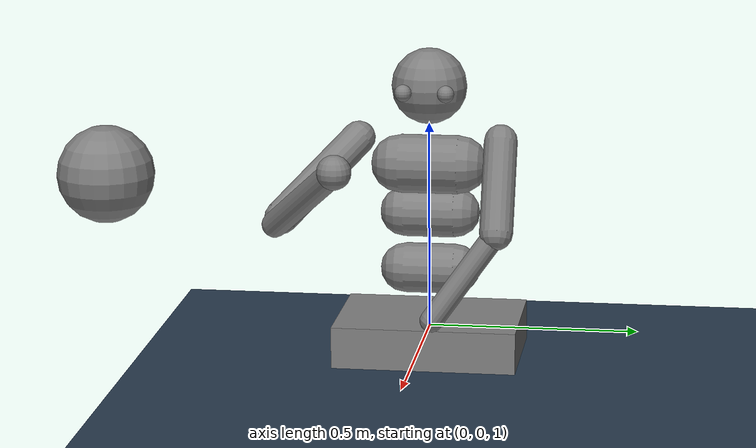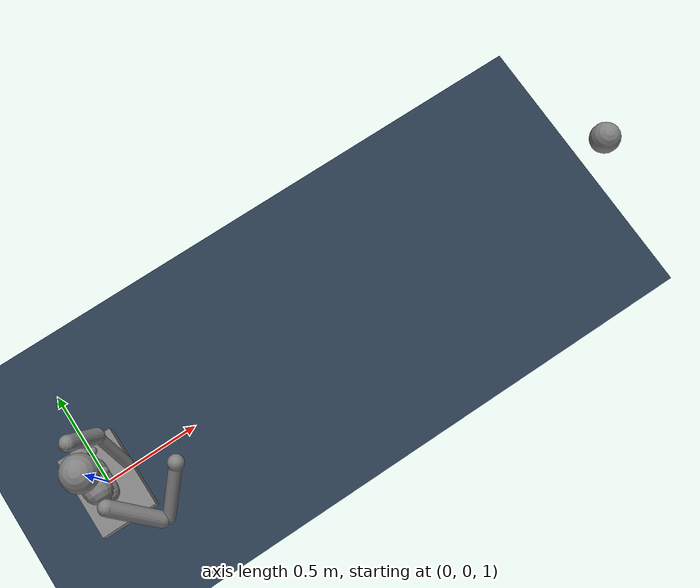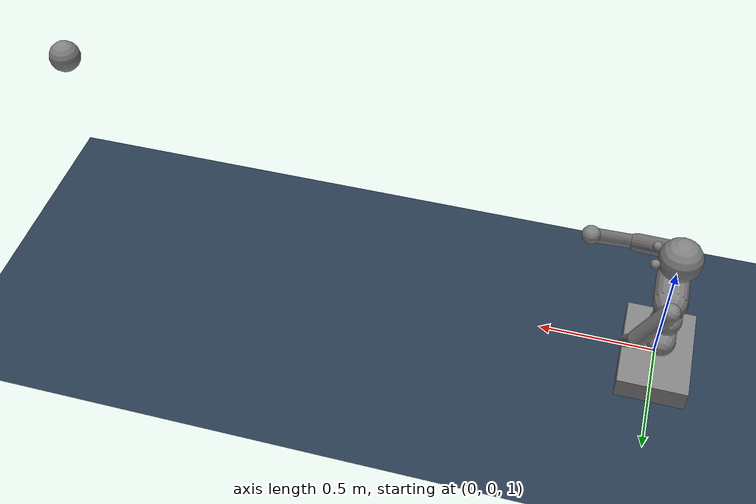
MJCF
<mujoco model='3-dmodel'>
    <compiler inertiafromgeom='true' angle='degree'/>

    <default>
        <joint limited='true' damping='1' armature='0'  />
        <motor ctrlrange='-.4 .4' ctrllimited='true'/>
    </default>

    <option timestep='0.002' iterations="50" solver="PGS">
        <flag energy="enable"/>
    </option>

    <size nkey='5'/>

    <visual>
        <map fogstart="3" fogend="5" force="0.1"/>
        <quality shadowsize="2048"/>
    </visual>

    <asset>
        <texture type="skybox" builtin="gradient" width="100" height="100" rgb1=".4 .6 .8"
                 rgb2="0 0 0"/>
        <texture name="texgeom" type="cube" builtin="flat" mark="cross" width="127" height="1278"
                 rgb1="0.8 0.6 0.4" rgb2="0.8 0.6 0.4" markrgb="1 1 1" random="0.01"/>
        <texture name="texplane" type="2d" builtin="checker" rgb1=".2 .3 .4" rgb2=".1 0.15 0.2"
                 width="100" height="100"/>

        <material name='MatPlane' reflectance='0.5' texture="texplane" texrepeat="1 1" texuniform="true"/>
        <material name='geom' texture="texgeom" texuniform="true"/>
    </asset>

    <worldbody>
        <geom name='floor' pos='0 0 0.925' size='10 10 0.125' type='plane' material="MatPlane" condim='3'/>

        <body name='torso' pos='0 0 1.4'>
            <light mode='trackcom' directional='false' diffuse='.8 .8 .8' specular='0.3 0.3 0.3' pos='0 0 4.0' dir='0 0 -1'/>

            <joint name='root' type='free' pos='0 0 0' limited='false' damping='0' armature='0' stiffness='0'/>
            <geom name='torso1' type='capsule' fromto='0 -.07 0 0 .07 0'  size='0.07' />

            <geom name='uwaist' type='capsule' fromto='-.01 -.06 -.12 -.01 .06 -.12' size='0.06'/>
            <body name='lwaist' pos='-.01 0 -0.260' quat='1.000 0 -0.002 0' >
                <geom name='lwaist' type='capsule' fromto='0 -.06 0 0 .06 0'  size='0.06' />
                <joint name='abdomen_z' type='hinge' pos='0 0 0.065' axis='0 0 1' range='-60 60' damping='5' stiffness='20' armature='0.02' />

                <body name='pelvis' pos='0 0 -0.165' quat='1.000 0 -0.002 0' >

                    <geom name='butt' type='box'  size='0.15 0.22 0.05' density="4500"/>

                </body>
            </body>
            <body name="head" pos="0 0 0.19">
                <geom name='head' type='sphere' pos='0 0 0' size='.09'/>
                <joint name="head_z" type="hinge" axis="0 0 1" range="-60 60" damping="5" stiffness="0" armature="0.02" pos="0 0 -.11"/>
                <joint name="head_y" type="hinge" axis="0 1 0" range="-20 45" damping="5" stiffness="0" armature="0.02" pos="0 0 -.11"/>
                <body name="eyes" pos="0 0 0">
                    <geom name="l_eye" type="sphere" size=".02" pos="0.095 -0.05 0"/>
                    <geom name="r_eye" type="sphere" size=".02" pos="0.095 0.05 0"/>
                </body>
            </body>

            <body name='right_upper_arm' pos='0 -0.17 0.06' >
                <joint name='right_shoulder1' type='hinge' pos='0 0 0' axis='2 1 1'  range='-60 60' stiffness='1' armature='0.0068' />
                <joint name='right_shoulder2' type='hinge' pos='0 0 0' axis='0 -1 1' range='-60 60' stiffness='1'  armature='0.0051' />
                <geom name='right_uarm1' type='capsule' fromto='0 0 0 .16 -.16 -.16'  size='0.04 0.16' />
                <body name='right_lower_arm' pos='.18 -.18 -.18' >
                    <joint name='right_elbow' type='hinge' pos='0 0 0' axis='0 -1 1' range='-90 50'  stiffness='0' armature='0.0028' />
                    <joint name="right_elbow2" type="hinge" pos="0 0 0" axis="0 0 -1" range="-45 40" stiffness="0" armature="0.0028" />
                    <geom name='right_larm' type='capsule' fromto='0.01 0.01 0.01 .17 .17 .17'  size='0.031' />
                    <body name="right_hand" pos=".18 .18 .18">
                        <geom name='right_hand' type='sphere' size='0.04'/>
                    </body>

                </body>
            </body>
            <body name='left_upper_arm' pos='0 0.17 0.06' >
                <geom name='left_uarm1' type='capsule' fromto='0 0 0 .1 0 -.2'  size='0.04 0.16' />
                <body name='left_lower_arm' pos='.1 0 -.2' >
                    <geom name='left_larm' type='capsule' fromto='0 0 0. .03 -.15 -.21'  size='0.028' />
                </body>
            </body>
        </body>
        <body name="target" pos="2.6 -0.09 2">
            <geom name='target' type='sphere' pos='0 0 0' size='.065'/>
            <joint name="target_y" type="slide" pos="0 0 0" axis="0 1 0" range="-90 50" stiffness="0" armature="0.0028"/>
            <joint name="target_z" type="slide" pos="0 0 0" axis="0 0 1" range="-90 50" stiffness="0" armature="0.0028"/>
            <joint name="target_x" type="slide" pos="0 0 0" axis="1 0 0" range="-90 50" stiffness="0" armature="0.0028"/>
        </body>
    </worldbody>

    <actuator>

        <motor name='head_z'       gear='50' joint='head_z' />
        <motor name='head_y'       gear='50' joint='head_y' />
        <motor name='abdomen_z'       gear='200' joint='abdomen_z' />

        <motor name='right_shoulder1' gear='120' joint='right_shoulder1' />
        <motor name='right_shoulder2' gear='120' joint='right_shoulder2' />
        <motor name='right_elbow'     gear='75' joint='right_elbow' />
        <motor name='right_elbow2'     gear='75' joint='right_elbow2' />

    </actuator>

</mujoco>
